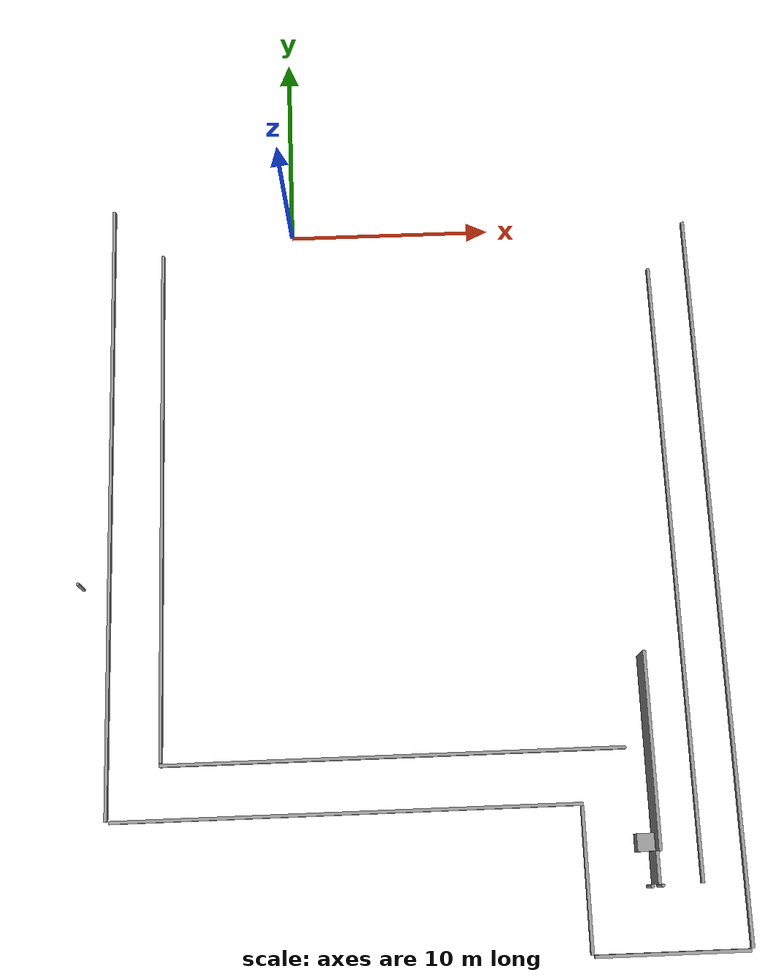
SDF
<sdf version="1.6">
 <model name="unit_box_map12">
  <link name="link_1_clone_0">
   <pose>15.5289 -30.814 0.5 0 -0 0</pose>
   <inertial>
    <mass>1</mass>
    <inertia>
     <ixx>0.166667</ixx>
     <ixy>0</ixy>
     <ixz>0</ixz>
     <iyy>0.166667</iyy>
     <iyz>0</iyz>
     <izz>0.166667</izz>
    </inertia>
   </inertial>
   <visual name="visual">
    <geometry><box><size>0.8 0.8 1</size></box></geometry>
    <material>
     <lighting>1</lighting>
     <script><uri>file://media/materials/scripts/gazebo.material</uri><name>Gazebo/Grey</name></script>
     <ambient>0.3 0.3 0.3 1</ambient>
     <diffuse>0.7 0.7 0.7 1</diffuse>
     <specular>0.01 0.01 0.01 1</specular>
     <emissive>0 0 0 1</emissive>
     <shader type="vertex"><normal_map>__default__</normal_map></shader>
    </material>
   </visual>
   <collision name="collision">
    <geometry><box><size>0.8 0.8 1</size></box></geometry>
    <surface>
     <friction>
      <ode><mu>1</mu><mu2>1</mu2><fdir1>0 0 0</fdir1><slip1>0</slip1><slip2>0</slip2></ode>
      <torsional>
       <coefficient>1</coefficient>
       <patch_radius>0</patch_radius>
       <surface_radius>0</surface_radius>
       <use_patch_radius>1</use_patch_radius>
       <ode><slip>0</slip></ode>
      </torsional>
     </friction>
     <bounce><restitution_coefficient>0</restitution_coefficient><threshold>1e+06</threshold></bounce>
     <contact>
      <collide_without_contact>0</collide_without_contact>
      <collide_without_contact_bitmask>1</collide_without_contact_bitmask>
      <collide_bitmask>1</collide_bitmask>
      <ode>
       <soft_cfm>0</soft_cfm>
       <soft_erp>0.2</soft_erp>
       <kp>1e+13</kp>
       <kd>1</kd>
       <max_vel>0.01</max_vel>
       <min_depth>0</min_depth>
      </ode>
      <bullet>
       <split_impulse>1</split_impulse>
       <split_impulse_penetration_threshold>-0.01</split_impulse_penetration_threshold>
       <soft_cfm>0</soft_cfm>
       <soft_erp>0.2</soft_erp>
       <kp>1e+13</kp>
       <kd>1</kd>
      </bullet>
     </contact>
    </surface>
   </collision>
  </link>
  <link name="link_2_clone">
   <pose>16.0775 -32.7288 0.7539 0 -0 0</pose>
   <inertial>
    <mass>1</mass>
    <inertia><ixx>0.145833</ixx><ixy>0</ixy><ixz>0</ixz><iyy>0.145833</iyy><iyz>0</iyz><izz>0.125</izz></inertia>
   </inertial>
   <visual name="visual">
    <geometry><cylinder><radius>0.075</radius><length>1.5</length></cylinder></geometry>
    <material>
     <lighting>1</lighting>
     <script><uri>file://media/materials/scripts/gazebo.material</uri><name>Gazebo/Grey</name></script>
     <ambient>0.3 0.3 0.3 1</ambient>
     <diffuse>0.7 0.7 0.7 1</diffuse>
     <specular>0.01 0.01 0.01 1</specular>
     <emissive>0 0 0 1</emissive>
     <shader type="vertex"><normal_map>__default__</normal_map></shader>
    </material>
   </visual>
   <collision name="collision">
    <geometry><cylinder><radius>0.075</radius><length>1.5</length></cylinder></geometry>
    <surface>
     <friction>
      <ode><mu>1</mu><mu2>1</mu2><fdir1>0 0 0</fdir1><slip1>0</slip1><slip2>0</slip2></ode>
      <torsional>
       <coefficient>1</coefficient>
       <patch_radius>0</patch_radius>
       <surface_radius>0</surface_radius>
       <use_patch_radius>1</use_patch_radius>
       <ode><slip>0</slip></ode>
      </torsional>
     </friction>
     <bounce><restitution_coefficient>0</restitution_coefficient><threshold>1e+06</threshold></bounce>
     <contact>
      <collide_without_contact>0</collide_without_contact>
      <collide_without_contact_bitmask>1</collide_without_contact_bitmask>
      <collide_bitmask>1</collide_bitmask>
      <ode>
       <soft_cfm>0</soft_cfm>
       <soft_erp>0.2</soft_erp>
       <kp>1e+13</kp>
       <kd>1</kd>
       <max_vel>0.01</max_vel>
       <min_depth>0</min_depth>
      </ode>
      <bullet>
       <split_impulse>1</split_impulse>
       <split_impulse_penetration_threshold>-0.01</split_impulse_penetration_threshold>
       <soft_cfm>0</soft_cfm>
       <soft_erp>0.2</soft_erp>
       <kp>1e+13</kp>
       <kd>1</kd>
      </bullet>
     </contact>
    </surface>
   </collision>
  </link>
  <link name="link_2_clone_0">
   <pose>15.6074 -32.7433 0.7539 0 -0 0</pose>
   <inertial>
    <mass>1</mass>
    <inertia><ixx>0.145833</ixx><ixy>0</ixy><ixz>0</ixz><iyy>0.145833</iyy><iyz>0</iyz><izz>0.125</izz></inertia>
   </inertial>
   <visual name="visual">
    <geometry><cylinder><radius>0.075</radius><length>1.5</length></cylinder></geometry>
    <material>
     <lighting>1</lighting>
     <script><uri>file://media/materials/scripts/gazebo.material</uri><name>Gazebo/Grey</name></script>
     <ambient>0.3 0.3 0.3 1</ambient>
     <diffuse>0.7 0.7 0.7 1</diffuse>
     <specular>0.01 0.01 0.01 1</specular>
     <emissive>0 0 0 1</emissive>
     <shader type="vertex"><normal_map>__default__</normal_map></shader>
    </material>
   </visual>
   <collision name="collision">
    <geometry><cylinder><radius>0.075</radius><length>1.5</length></cylinder></geometry>
    <surface>
     <friction>
      <ode><mu>1</mu><mu2>1</mu2><fdir1>0 0 0</fdir1><slip1>0</slip1><slip2>0</slip2></ode>
      <torsional>
       <coefficient>1</coefficient>
       <patch_radius>0</patch_radius>
       <surface_radius>0</surface_radius>
       <use_patch_radius>1</use_patch_radius>
       <ode><slip>0</slip></ode>
      </torsional>
     </friction>
     <bounce><restitution_coefficient>0</restitution_coefficient><threshold>1e+06</threshold></bounce>
     <contact>
      <collide_without_contact>0</collide_without_contact>
      <collide_without_contact_bitmask>1</collide_without_contact_bitmask>
      <collide_bitmask>1</collide_bitmask>
      <ode>
       <soft_cfm>0</soft_cfm>
       <soft_erp>0.2</soft_erp>
       <kp>1e+13</kp>
       <kd>1</kd>
       <max_vel>0.01</max_vel>
       <min_depth>0</min_depth>
      </ode>
      <bullet>
       <split_impulse>1</split_impulse>
       <split_impulse_penetration_threshold>-0.01</split_impulse_penetration_threshold>
       <soft_cfm>0</soft_cfm>
       <soft_erp>0.2</soft_erp>
       <kp>1e+13</kp>
       <kd>1</kd>
      </bullet>
     </contact>
    </surface>
   </collision>
  </link>
  <link name="link_2_clone_clone_0_clone">
   <pose>-10.3926 -17.9729 0.7539 0 -0 0</pose>
   <inertial>
    <mass>1</mass>
    <inertia><ixx>0.145833</ixx><ixy>0</ixy><ixz>0</ixz><iyy>0.145833</iyy><iyz>0</iyz><izz>0.125</izz></inertia>
   </inertial>
   <visual name="visual">
    <geometry><cylinder><radius>0.075</radius><length>1.5</length></cylinder></geometry>
    <material>
     <lighting>1</lighting>
     <script><uri>file://media/materials/scripts/gazebo.material</uri><name>Gazebo/Grey</name></script>
     <ambient>0.3 0.3 0.3 1</ambient>
     <diffuse>0.7 0.7 0.7 1</diffuse>
     <specular>0.01 0.01 0.01 1</specular>
     <emissive>0 0 0 1</emissive>
     <shader type="vertex"><normal_map>__default__</normal_map></shader>
    </material>
   </visual>
   <collision name="collision">
    <geometry><cylinder><radius>0.075</radius><length>1.5</length></cylinder></geometry>
    <surface>
     <friction>
      <ode><mu>1</mu><mu2>1</mu2><fdir1>0 0 0</fdir1><slip1>0</slip1><slip2>0</slip2></ode>
      <torsional>
       <coefficient>1</coefficient>
       <patch_radius>0</patch_radius>
       <surface_radius>0</surface_radius>
       <use_patch_radius>1</use_patch_radius>
       <ode><slip>0</slip></ode>
      </torsional>
     </friction>
     <bounce><restitution_coefficient>0</restitution_coefficient><threshold>1e+06</threshold></bounce>
     <contact>
      <collide_without_contact>0</collide_without_contact>
      <collide_without_contact_bitmask>1</collide_without_contact_bitmask>
      <collide_bitmask>1</collide_bitmask>
      <ode>
       <soft_cfm>0</soft_cfm>
       <soft_erp>0.2</soft_erp>
       <kp>1e+13</kp>
       <kd>1</kd>
       <max_vel>0.01</max_vel>
       <min_depth>0</min_depth>
      </ode>
      <bullet>
       <split_impulse>1</split_impulse>
       <split_impulse_penetration_threshold>-0.01</split_impulse_penetration_threshold>
       <soft_cfm>0</soft_cfm>
       <soft_erp>0.2</soft_erp>
       <kp>1e+13</kp>
       <kd>1</kd>
      </bullet>
     </contact>
    </surface>
   </collision>
  </link>
  <link name="link_clone_0_clone_0">
   <pose>4.18838 -26.4536 0 0 -0 0</pose>
   <inertial>
    <mass>1</mass>
    <inertia>
     <ixx>0.166667</ixx>
     <ixy>0</ixy>
     <ixz>0</ixz>
     <iyy>0.166667</iyy>
     <iyz>0</iyz>
     <izz>0.166667</izz>
    </inertia>
   </inertial>
   <visual name="visual">
    <geometry><box><size>21.8 0.15 0.3</size></box></geometry>
    <material>
     <script><name>Gazebo/Grey</name><uri>file://media/materials/scripts/gazebo.material</uri></script>
     <ambient>0.3 0.3 0.3 1</ambient>
     <diffuse>0.7 0.7 0.7 1</diffuse>
     <specular>0.01 0.01 0.01 1</specular>
     <emissive>0 0 0 1</emissive>
     <shader type="vertex"><normal_map>__default__</normal_map></shader>
    </material>
   </visual>
   <collision name="collision">
    <geometry><box><size>21.8 0.15 0.3</size></box></geometry>
    <surface>
     <friction>
      <ode><mu>1</mu><mu2>1</mu2><fdir1>0 0 0</fdir1><slip1>0</slip1><slip2>0</slip2></ode>
      <torsional>
       <coefficient>1</coefficient>
       <patch_radius>0</patch_radius>
       <surface_radius>0</surface_radius>
       <use_patch_radius>1</use_patch_radius>
       <ode><slip>0</slip></ode>
      </torsional>
     </friction>
     <bounce><restitution_coefficient>0</restitution_coefficient><threshold>1e+06</threshold></bounce>
     <contact>
      <collide_without_contact>0</collide_without_contact>
      <collide_without_contact_bitmask>1</collide_without_contact_bitmask>
      <collide_bitmask>1</collide_bitmask>
      <ode>
       <soft_cfm>0</soft_cfm>
       <soft_erp>0.2</soft_erp>
       <kp>1e+13</kp>
       <kd>1</kd>
       <max_vel>0.01</max_vel>
       <min_depth>0</min_depth>
      </ode>
      <bullet>
       <split_impulse>1</split_impulse>
       <split_impulse_penetration_threshold>-0.01</split_impulse_penetration_threshold>
       <soft_cfm>0</soft_cfm>
       <soft_erp>0.2</soft_erp>
       <kp>1e+13</kp>
       <kd>1</kd>
      </bullet>
     </contact>
    </surface>
   </collision>
  </link>
  <link name="link_clone_0_clone_0_clone_clone_clone_0">
   <pose>16.4921 -35.6942 0 0 -0 0</pose>
   <inertial>
    <mass>1</mass>
    <inertia>
     <ixx>0.166667</ixx>
     <ixy>0</ixy>
     <ixz>0</ixz>
     <iyy>0.166667</iyy>
     <iyz>0</iyz>
     <izz>0.166667</izz>
    </inertia>
   </inertial>
   <visual name="visual">
    <geometry><box><size>7.1 0.15 0.3</size></box></geometry>
    <material>
     <script><name>Gazebo/Grey</name><uri>file://media/materials/scripts/gazebo.material</uri></script>
     <ambient>0.3 0.3 0.3 1</ambient>
     <diffuse>0.7 0.7 0.7 1</diffuse>
     <specular>0.01 0.01 0.01 1</specular>
     <emissive>0 0 0 1</emissive>
     <shader type="vertex"><normal_map>__default__</normal_map></shader>
    </material>
   </visual>
   <collision name="collision">
    <geometry><box><size>7.1 0.15 0.3</size></box></geometry>
    <surface>
     <friction>
      <ode><mu>1</mu><mu2>1</mu2><fdir1>0 0 0</fdir1><slip1>0</slip1><slip2>0</slip2></ode>
      <torsional>
       <coefficient>1</coefficient>
       <patch_radius>0</patch_radius>
       <surface_radius>0</surface_radius>
       <use_patch_radius>1</use_patch_radius>
       <ode><slip>0</slip></ode>
      </torsional>
     </friction>
     <bounce><restitution_coefficient>0</restitution_coefficient><threshold>1e+06</threshold></bounce>
     <contact>
      <collide_without_contact>0</collide_without_contact>
      <collide_without_contact_bitmask>1</collide_without_contact_bitmask>
      <collide_bitmask>1</collide_bitmask>
      <ode>
       <soft_cfm>0</soft_cfm>
       <soft_erp>0.2</soft_erp>
       <kp>1e+13</kp>
       <kd>1</kd>
       <max_vel>0.01</max_vel>
       <min_depth>0</min_depth>
      </ode>
      <bullet>
       <split_impulse>1</split_impulse>
       <split_impulse_penetration_threshold>-0.01</split_impulse_penetration_threshold>
       <soft_cfm>0</soft_cfm>
       <soft_erp>0.2</soft_erp>
       <kp>1e+13</kp>
       <kd>1</kd>
      </bullet>
     </contact>
    </surface>
   </collision>
  </link>
  <link name="link_clone_0_clone_clone">
   <pose>-9.18362 -13.5485 0 0 -0 1.5707</pose>
   <inertial>
    <mass>1</mass>
    <inertia>
     <ixx>0.166667</ixx>
     <ixy>0</ixy>
     <ixz>0</ixz>
     <iyy>0.166667</iyy>
     <iyz>0</iyz>
     <izz>0.166667</izz>
    </inertia>
   </inertial>
   <visual name="visual">
    <geometry><box><size>30.7 0.15 0.3</size></box></geometry>
    <material>
     <script><name>Gazebo/Grey</name><uri>file://media/materials/scripts/gazebo.material</uri></script>
     <ambient>0.3 0.3 0.3 1</ambient>
     <diffuse>0.7 0.7 0.7 1</diffuse>
     <specular>0.01 0.01 0.01 1</specular>
     <emissive>0 0 0 1</emissive>
     <shader type="vertex"><normal_map>__default__</normal_map></shader>
    </material>
   </visual>
   <collision name="collision">
    <geometry><box><size>30.7 0.15 0.3</size></box></geometry>
    <surface>
     <friction>
      <ode><mu>1</mu><mu2>1</mu2><fdir1>0 0 0</fdir1><slip1>0</slip1><slip2>0</slip2></ode>
      <torsional>
       <coefficient>1</coefficient>
       <patch_radius>0</patch_radius>
       <surface_radius>0</surface_radius>
       <use_patch_radius>1</use_patch_radius>
       <ode><slip>0</slip></ode>
      </torsional>
     </friction>
     <bounce><restitution_coefficient>0</restitution_coefficient><threshold>1e+06</threshold></bounce>
     <contact>
      <collide_without_contact>0</collide_without_contact>
      <collide_without_contact_bitmask>1</collide_without_contact_bitmask>
      <collide_bitmask>1</collide_bitmask>
      <ode>
       <soft_cfm>0</soft_cfm>
       <soft_erp>0.2</soft_erp>
       <kp>1e+13</kp>
       <kd>1</kd>
       <max_vel>0.01</max_vel>
       <min_depth>0</min_depth>
      </ode>
      <bullet>
       <split_impulse>1</split_impulse>
       <split_impulse_penetration_threshold>-0.01</split_impulse_penetration_threshold>
       <soft_cfm>0</soft_cfm>
       <soft_erp>0.2</soft_erp>
       <kp>1e+13</kp>
       <kd>1</kd>
      </bullet>
     </contact>
    </surface>
   </collision>
  </link>
  <link name="link_clone_0_clone_clone_0_clone_0">
   <pose>15.8475 -31.9455 1.00786 0 -0 1.5707</pose>
   <inertial>
    <mass>1</mass>
    <inertia>
     <ixx>0.166667</ixx>
     <ixy>0</ixy>
     <ixz>0</ixz>
     <iyy>0.166667</iyy>
     <iyz>0</iyz>
     <izz>0.166667</izz>
    </inertia>
   </inertial>
   <visual name="visual">
    <geometry><box><size>1.45 0.15 2</size></box></geometry>
    <material>
     <script><name>Gazebo/Grey</name><uri>file://media/materials/scripts/gazebo.material</uri></script>
     <ambient>0.3 0.3 0.3 1</ambient>
     <diffuse>0.7 0.7 0.7 1</diffuse>
     <specular>0.01 0.01 0.01 1</specular>
     <emissive>0 0 0 1</emissive>
     <shader type="vertex"><normal_map>__default__</normal_map></shader>
    </material>
   </visual>
   <collision name="collision">
    <geometry><box><size>1.45 0.15 2</size></box></geometry>
    <surface>
     <friction>
      <ode><mu>1</mu><mu2>1</mu2><fdir1>0 0 0</fdir1><slip1>0</slip1><slip2>0</slip2></ode>
      <torsional>
       <coefficient>1</coefficient>
       <patch_radius>0</patch_radius>
       <surface_radius>0</surface_radius>
       <use_patch_radius>1</use_patch_radius>
       <ode><slip>0</slip></ode>
      </torsional>
     </friction>
     <bounce><restitution_coefficient>0</restitution_coefficient><threshold>1e+06</threshold></bounce>
     <contact>
      <collide_without_contact>0</collide_without_contact>
      <collide_without_contact_bitmask>1</collide_without_contact_bitmask>
      <collide_bitmask>1</collide_bitmask>
      <ode>
       <soft_cfm>0</soft_cfm>
       <soft_erp>0.2</soft_erp>
       <kp>1e+13</kp>
       <kd>1</kd>
       <max_vel>0.01</max_vel>
       <min_depth>0</min_depth>
      </ode>
      <bullet>
       <split_impulse>1</split_impulse>
       <split_impulse_penetration_threshold>-0.01</split_impulse_penetration_threshold>
       <soft_cfm>0</soft_cfm>
       <soft_erp>0.2</soft_erp>
       <kp>1e+13</kp>
       <kd>1</kd>
      </bullet>
     </contact>
    </surface>
   </collision>
  </link>
  <link name="link_clone_0_clone_clone_0_clone_clone">
   <pose>20.1151 -17.7582 0 0 -0 1.5707</pose>
   <inertial>
    <mass>1</mass>
    <inertia>
     <ixx>0.166667</ixx>
     <ixy>0</ixy>
     <ixz>0</ixz>
     <iyy>0.166667</iyy>
     <iyz>0</iyz>
     <izz>0.166667</izz>
    </inertia>
   </inertial>
   <visual name="visual">
    <geometry><box><size>35.7 0.15 0.3</size></box></geometry>
    <material>
     <script><name>Gazebo/Grey</name><uri>file://media/materials/scripts/gazebo.material</uri></script>
     <ambient>0.3 0.3 0.3 1</ambient>
     <diffuse>0.7 0.7 0.7 1</diffuse>
     <specular>0.01 0.01 0.01 1</specular>
     <emissive>0 0 0 1</emissive>
     <shader type="vertex"><normal_map>__default__</normal_map></shader>
    </material>
   </visual>
   <collision name="collision">
    <geometry><box><size>35.7 0.15 0.3</size></box></geometry>
    <surface>
     <friction>
      <ode><mu>1</mu><mu2>1</mu2><fdir1>0 0 0</fdir1><slip1>0</slip1><slip2>0</slip2></ode>
      <torsional>
       <coefficient>1</coefficient>
       <patch_radius>0</patch_radius>
       <surface_radius>0</surface_radius>
       <use_patch_radius>1</use_patch_radius>
       <ode><slip>0</slip></ode>
      </torsional>
     </friction>
     <bounce><restitution_coefficient>0</restitution_coefficient><threshold>1e+06</threshold></bounce>
     <contact>
      <collide_without_contact>0</collide_without_contact>
      <collide_without_contact_bitmask>1</collide_without_contact_bitmask>
      <collide_bitmask>1</collide_bitmask>
      <ode>
       <soft_cfm>0</soft_cfm>
       <soft_erp>0.2</soft_erp>
       <kp>1e+13</kp>
       <kd>1</kd>
       <max_vel>0.01</max_vel>
       <min_depth>0</min_depth>
      </ode>
      <bullet>
       <split_impulse>1</split_impulse>
       <split_impulse_penetration_threshold>-0.01</split_impulse_penetration_threshold>
       <soft_cfm>0</soft_cfm>
       <soft_erp>0.2</soft_erp>
       <kp>1e+13</kp>
       <kd>1</kd>
      </bullet>
     </contact>
    </surface>
   </collision>
  </link>
  <link name="link_clone_0_clone_clone_0_clone_clone_0">
   <pose>12.8587 -32.331 0 0 -0 1.5707</pose>
   <inertial>
    <mass>1</mass>
    <inertia>
     <ixx>0.166667</ixx>
     <ixy>0</ixy>
     <ixz>0</ixz>
     <iyy>0.166667</iyy>
     <iyz>0</iyz>
     <izz>0.166667</izz>
    </inertia>
   </inertial>
   <visual name="visual">
    <geometry><box><size>6.56 0.15 0.3</size></box></geometry>
    <material>
     <script><name>Gazebo/Grey</name><uri>file://media/materials/scripts/gazebo.material</uri></script>
     <ambient>0.3 0.3 0.3 1</ambient>
     <diffuse>0.7 0.7 0.7 1</diffuse>
     <specular>0.01 0.01 0.01 1</specular>
     <emissive>0 0 0 1</emissive>
     <shader type="vertex"><normal_map>__default__</normal_map></shader>
    </material>
   </visual>
   <collision name="collision">
    <geometry><box><size>6.56 0.15 0.3</size></box></geometry>
    <surface>
     <friction>
      <ode><mu>1</mu><mu2>1</mu2><fdir1>0 0 0</fdir1><slip1>0</slip1><slip2>0</slip2></ode>
      <torsional>
       <coefficient>1</coefficient>
       <patch_radius>0</patch_radius>
       <surface_radius>0</surface_radius>
       <use_patch_radius>1</use_patch_radius>
       <ode><slip>0</slip></ode>
      </torsional>
     </friction>
     <bounce><restitution_coefficient>0</restitution_coefficient><threshold>1e+06</threshold></bounce>
     <contact>
      <collide_without_contact>0</collide_without_contact>
      <collide_without_contact_bitmask>1</collide_without_contact_bitmask>
      <collide_bitmask>1</collide_bitmask>
      <ode>
       <soft_cfm>0</soft_cfm>
       <soft_erp>0.2</soft_erp>
       <kp>1e+13</kp>
       <kd>1</kd>
       <max_vel>0.01</max_vel>
       <min_depth>0</min_depth>
      </ode>
      <bullet>
       <split_impulse>1</split_impulse>
       <split_impulse_penetration_threshold>-0.01</split_impulse_penetration_threshold>
       <soft_cfm>0</soft_cfm>
       <soft_erp>0.2</soft_erp>
       <kp>1e+13</kp>
       <kd>1</kd>
      </bullet>
     </contact>
    </surface>
   </collision>
  </link>
  <link name="link_clone_0_clone_clone_0_clone_clone_0_clone">
   <pose>16.0076 -26.735 0.995408 0 -0 1.5707</pose>
   <inertial>
    <mass>3.86965</mass>
    <inertia><ixx>0.644944</ixx><ixy>0</ixy><ixz>0</ixz><iyy>5.15123</iyy><iyz>0</iyz><izz>5.15123</izz></inertia>
   </inertial>
   <visual name="visual">
    <geometry><box><size>9.0163 0.15 2</size></box></geometry>
    <material>
     <script><name>Gazebo/Grey</name><uri>file://media/materials/scripts/gazebo.material</uri></script>
     <ambient>0.3 0.3 0.3 1</ambient>
     <diffuse>0.7 0.7 0.7 1</diffuse>
     <specular>0.01 0.01 0.01 1</specular>
     <emissive>0 0 0 1</emissive>
     <shader type="vertex"><normal_map>__default__</normal_map></shader>
    </material>
   </visual>
   <collision name="collision">
    <geometry><box><size>9.0163 0.15 2</size></box></geometry>
    <surface>
     <friction>
      <ode><mu>1</mu><mu2>1</mu2><fdir1>0 0 0</fdir1><slip1>0</slip1><slip2>0</slip2></ode>
      <torsional>
       <coefficient>1</coefficient>
       <patch_radius>0</patch_radius>
       <surface_radius>0</surface_radius>
       <use_patch_radius>1</use_patch_radius>
       <ode><slip>0</slip></ode>
      </torsional>
     </friction>
     <bounce><restitution_coefficient>0</restitution_coefficient><threshold>1e+06</threshold></bounce>
     <contact>
      <collide_without_contact>0</collide_without_contact>
      <collide_without_contact_bitmask>1</collide_without_contact_bitmask>
      <collide_bitmask>1</collide_bitmask>
      <ode>
       <soft_cfm>0</soft_cfm>
       <soft_erp>0.2</soft_erp>
       <kp>1e+13</kp>
       <kd>1</kd>
       <max_vel>0.01</max_vel>
       <min_depth>0</min_depth>
      </ode>
      <bullet>
       <split_impulse>1</split_impulse>
       <split_impulse_penetration_threshold>-0.01</split_impulse_penetration_threshold>
       <soft_cfm>0</soft_cfm>
       <soft_erp>0.2</soft_erp>
       <kp>1e+13</kp>
       <kd>1</kd>
      </bullet>
     </contact>
    </surface>
   </collision>
  </link>
  <link name="link_clone_0_clone_clone_0_clone_clone_0_clone_0">
   <pose>-6.6643 -13.5448 0 0 -0 1.5707</pose>
   <inertial>
    <mass>1</mass>
    <inertia>
     <ixx>0.166667</ixx>
     <ixy>0</ixy>
     <ixz>0</ixz>
     <iyy>0.166667</iyy>
     <iyz>0</iyz>
     <izz>0.166667</izz>
    </inertia>
   </inertial>
   <visual name="visual">
    <geometry><box><size>25.6 0.15 0.3</size></box></geometry>
    <material>
     <script><name>Gazebo/Grey</name><uri>file://media/materials/scripts/gazebo.material</uri></script>
     <ambient>0.3 0.3 0.3 1</ambient>
     <diffuse>0.7 0.7 0.7 1</diffuse>
     <specular>0.01 0.01 0.01 1</specular>
     <emissive>0 0 0 1</emissive>
     <shader type="vertex"><normal_map>__default__</normal_map></shader>
    </material>
   </visual>
   <collision name="collision">
    <geometry><box><size>25.6 0.15 0.3</size></box></geometry>
    <surface>
     <friction>
      <ode><mu>1</mu><mu2>1</mu2><fdir1>0 0 0</fdir1><slip1>0</slip1><slip2>0</slip2></ode>
      <torsional>
       <coefficient>1</coefficient>
       <patch_radius>0</patch_radius>
       <surface_radius>0</surface_radius>
       <use_patch_radius>1</use_patch_radius>
       <ode><slip>0</slip></ode>
      </torsional>
     </friction>
     <bounce><restitution_coefficient>0</restitution_coefficient><threshold>1e+06</threshold></bounce>
     <contact>
      <collide_without_contact>0</collide_without_contact>
      <collide_without_contact_bitmask>1</collide_without_contact_bitmask>
      <collide_bitmask>1</collide_bitmask>
      <ode>
       <soft_cfm>0</soft_cfm>
       <soft_erp>0.2</soft_erp>
       <kp>1e+13</kp>
       <kd>1</kd>
       <max_vel>0.01</max_vel>
       <min_depth>0</min_depth>
      </ode>
      <bullet>
       <split_impulse>1</split_impulse>
       <split_impulse_penetration_threshold>-0.01</split_impulse_penetration_threshold>
       <soft_cfm>0</soft_cfm>
       <soft_erp>0.2</soft_erp>
       <kp>1e+13</kp>
       <kd>1</kd>
      </bullet>
     </contact>
    </surface>
   </collision>
  </link>
  <link name="link_clone_0_clone_clone_1">
   <pose>18.1302 -17.5584 0 0 -0 1.5707</pose>
   <inertial>
    <mass>1</mass>
    <inertia>
     <ixx>0.166667</ixx>
     <ixy>0</ixy>
     <ixz>0</ixz>
     <iyy>0.166667</iyy>
     <iyz>0</iyz>
     <izz>0.166667</izz>
    </inertia>
   </inertial>
   <visual name="visual">
    <geometry><box><size>30.3 0.15 0.3</size></box></geometry>
    <material>
     <script><name>Gazebo/Grey</name><uri>file://media/materials/scripts/gazebo.material</uri></script>
     <ambient>0.3 0.3 0.3 1</ambient>
     <diffuse>0.7 0.7 0.7 1</diffuse>
     <specular>0.01 0.01 0.01 1</specular>
     <emissive>0 0 0 1</emissive>
     <shader type="vertex"><normal_map>__default__</normal_map></shader>
    </material>
   </visual>
   <collision name="collision">
    <geometry><box><size>30.3 0.15 0.3</size></box></geometry>
    <surface>
     <friction>
      <ode><mu>1</mu><mu2>1</mu2><fdir1>0 0 0</fdir1><slip1>0</slip1><slip2>0</slip2></ode>
      <torsional>
       <coefficient>1</coefficient>
       <patch_radius>0</patch_radius>
       <surface_radius>0</surface_radius>
       <use_patch_radius>1</use_patch_radius>
       <ode><slip>0</slip></ode>
      </torsional>
     </friction>
     <bounce><restitution_coefficient>0</restitution_coefficient><threshold>1e+06</threshold></bounce>
     <contact>
      <collide_without_contact>0</collide_without_contact>
      <collide_without_contact_bitmask>1</collide_without_contact_bitmask>
      <collide_bitmask>1</collide_bitmask>
      <ode>
       <soft_cfm>0</soft_cfm>
       <soft_erp>0.2</soft_erp>
       <kp>1e+13</kp>
       <kd>1</kd>
       <max_vel>0.01</max_vel>
       <min_depth>0</min_depth>
      </ode>
      <bullet>
       <split_impulse>1</split_impulse>
       <split_impulse_penetration_threshold>-0.01</split_impulse_penetration_threshold>
       <soft_cfm>0</soft_cfm>
       <soft_erp>0.2</soft_erp>
       <kp>1e+13</kp>
       <kd>1</kd>
      </bullet>
     </contact>
    </surface>
   </collision>
  </link>
  <link name="link_clone_1">
   <pose>1.9338 -28.9492 0 0 -0 0</pose>
   <inertial>
    <mass>1</mass>
    <inertia>
     <ixx>0.166667</ixx>
     <ixy>0</ixy>
     <ixz>0</ixz>
     <iyy>0.166667</iyy>
     <iyz>0</iyz>
     <izz>0.166667</izz>
    </inertia>
   </inertial>
   <visual name="visual">
    <geometry><box><size>21.95 0.15 0.3</size></box></geometry>
    <material>
     <script><name>Gazebo/Grey</name><uri>file://media/materials/scripts/gazebo.material</uri></script>
     <ambient>0.3 0.3 0.3 1</ambient>
     <diffuse>0.7 0.7 0.7 1</diffuse>
     <specular>0.01 0.01 0.01 1</specular>
     <emissive>0 0 0 1</emissive>
     <shader type="vertex"><normal_map>__default__</normal_map></shader>
    </material>
   </visual>
   <collision name="collision">
    <geometry><box><size>21.95 0.15 0.3</size></box></geometry>
    <surface>
     <friction>
      <ode><mu>1</mu><mu2>1</mu2><fdir1>0 0 0</fdir1><slip1>0</slip1><slip2>0</slip2></ode>
      <torsional>
       <coefficient>1</coefficient>
       <patch_radius>0</patch_radius>
       <surface_radius>0</surface_radius>
       <use_patch_radius>1</use_patch_radius>
       <ode><slip>0</slip></ode>
      </torsional>
     </friction>
     <bounce><restitution_coefficient>0</restitution_coefficient><threshold>1e+06</threshold></bounce>
     <contact>
      <collide_without_contact>0</collide_without_contact>
      <collide_without_contact_bitmask>1</collide_without_contact_bitmask>
      <collide_bitmask>1</collide_bitmask>
      <ode>
       <soft_cfm>0</soft_cfm>
       <soft_erp>0.2</soft_erp>
       <kp>1e+13</kp>
       <kd>1</kd>
       <max_vel>0.01</max_vel>
       <min_depth>0</min_depth>
      </ode>
      <bullet>
       <split_impulse>1</split_impulse>
       <split_impulse_penetration_threshold>-0.01</split_impulse_penetration_threshold>
       <soft_cfm>0</soft_cfm>
       <soft_erp>0.2</soft_erp>
       <kp>1e+13</kp>
       <kd>1</kd>
      </bullet>
     </contact>
    </surface>
   </collision>
  </link>
  <static>1</static>
  <allow_auto_disable>0</allow_auto_disable>
 </model>
</sdf>
